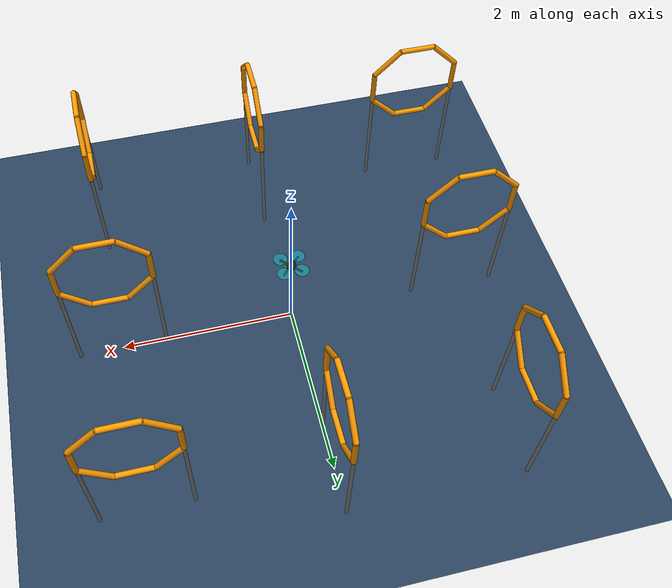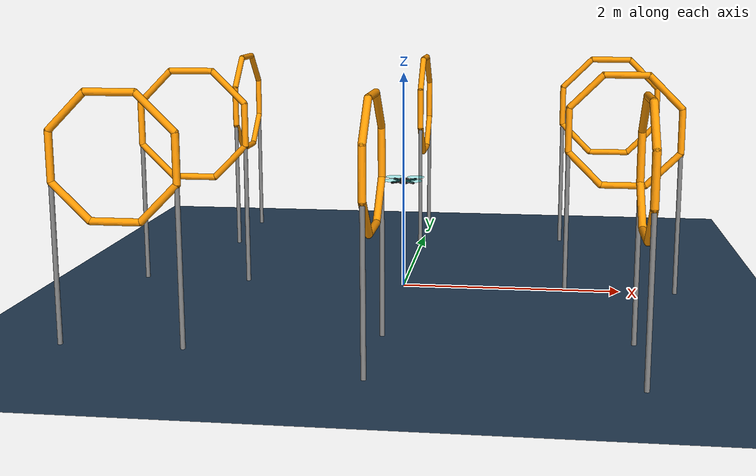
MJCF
<mujoco model="quadrotor_racing">
    <compiler angle="degree" coordinate="local" inertiafromgeom="true"/>
    <option timestep="0.01" gravity="0 0 -9.81" integrator="RK4"/>

    <visual>
        <headlight diffuse="0.6 0.6 0.6" ambient="0.3 0.3 0.3" specular="0 0 0"/>
        <rgba haze="0.15 0.25 0.35 1"/>
        <global azimuth="120" elevation="-20"/>
    </visual>

    <asset>
        <texture type="skybox" builtin="gradient" rgb1="0.3 0.5 0.7" rgb2="0 0 0" width="512" height="3072"/>
        <texture type="2d" name="groundplane" builtin="checker" mark="edge" rgb1="0.2 0.3 0.4" rgb2="0.1 0.2 0.3" markrgb="0.8 0.8 0.8" width="300" height="300"/>
        <material name="groundplane" texture="groundplane" texuniform="true" texrepeat="5 5" reflectance="0.2"/>
        <material name="gate_mat" rgba="1 0.6 0 1" reflectance="0.5" shininess="0.5"/>
        <material name="pole_mat" rgba="0.5 0.5 0.5 1" reflectance="0.2"/>
        <material name="drone_mat" rgba="0.1 0.1 0.1 1" reflectance="0.8" shininess="0.8"/>
        <material name="prop_mat" rgba="0 1 1 0.3"/>
    </asset>

    <default>
        <geom type="box" condim="6" friction="0.8 0.1 0.1"/>
        <default class="visual">
            <geom type="mesh" mass="0" contype="0" conaffinity="0" group="2"/>
        </default>
        <default class="gate_col">
             <!-- Thinner collision capsules to prevent "invisible wall" hits -->
             <geom type="capsule" size="0.03" material="gate_mat" condim="1"/>
        </default>
        <default class="pole">
            <geom type="cylinder" size="0.02" material="pole_mat" condim="1"/>
        </default>
    </default>

    <worldbody>
        <light pos="0 0 5" dir="0 0 -1" directional="true"/>
        <geom name="floor" type="plane" pos="0 0 0" size="20 20 0.1" material="groundplane"/>

        <!-- ================= OCTAGONAL GATES ================= -->
        <!-- Each gate is built from 8 capsules forming a ring -->

        <!-- Gate 1 (2.0, 0.0) -->
        <body name="gate1" pos="2.0 0.0 1.5">
            <geom class="gate_col" fromto="0.2 0 0.5   -0.2 0 0.5"/> <!-- Top -->
            <geom class="gate_col" fromto="0.2 0 -0.5  -0.2 0 -0.5"/> <!-- Bottom -->
            <geom class="gate_col" fromto="0.5 0 0.2   0.5 0 -0.2"/> <!-- Right -->
            <geom class="gate_col" fromto="-0.5 0 0.2  -0.5 0 -0.2"/> <!-- Left -->
            <geom class="gate_col" fromto="0.2 0 0.5   0.5 0 0.2"/> <!-- TR -->
            <geom class="gate_col" fromto="-0.2 0 0.5  -0.5 0 0.2"/> <!-- TL -->
            <geom class="gate_col" fromto="0.2 0 -0.5  0.5 0 -0.2"/> <!-- BR -->
            <geom class="gate_col" fromto="-0.2 0 -0.5 -0.5 0 -0.2"/> <!-- BL -->
            <geom class="pole" fromto="0.5 0 -0.2  0.5 0 -1.5"/>
            <geom class="pole" fromto="-0.5 0 -0.2 -0.5 0 -1.5"/>
        </body>

        <!-- Gate 2 (2.0, 2.0) -->
        <body name="gate2" pos="2.0 2.0 1.5">
            <geom class="gate_col" fromto="0.2 0 0.5   -0.2 0 0.5"/>
            <geom class="gate_col" fromto="0.2 0 -0.5  -0.2 0 -0.5"/>
            <geom class="gate_col" fromto="0.5 0 0.2   0.5 0 -0.2"/>
            <geom class="gate_col" fromto="-0.5 0 0.2  -0.5 0 -0.2"/>
            <geom class="gate_col" fromto="0.2 0 0.5   0.5 0 0.2"/>
            <geom class="gate_col" fromto="-0.2 0 0.5  -0.5 0 0.2"/>
            <geom class="gate_col" fromto="0.2 0 -0.5  0.5 0 -0.2"/>
            <geom class="gate_col" fromto="-0.2 0 -0.5 -0.5 0 -0.2"/>
            <geom class="pole" fromto="0.5 0 -0.2  0.5 0 -1.5"/>
            <geom class="pole" fromto="-0.5 0 -0.2 -0.5 0 -1.5"/>
        </body>

        <!-- Gate 3 (0.0, 2.0) - Rotated 90 -->
        <body name="gate3" pos="0.0 2.0 1.5" euler="0 0 90">
            <geom class="gate_col" fromto="0.2 0 0.5   -0.2 0 0.5"/>
            <geom class="gate_col" fromto="0.2 0 -0.5  -0.2 0 -0.5"/>
            <geom class="gate_col" fromto="0.5 0 0.2   0.5 0 -0.2"/>
            <geom class="gate_col" fromto="-0.5 0 0.2  -0.5 0 -0.2"/>
            <geom class="gate_col" fromto="0.2 0 0.5   0.5 0 0.2"/>
            <geom class="gate_col" fromto="-0.2 0 0.5  -0.5 0 0.2"/>
            <geom class="gate_col" fromto="0.2 0 -0.5  0.5 0 -0.2"/>
            <geom class="gate_col" fromto="-0.2 0 -0.5 -0.5 0 -0.2"/>
            <geom class="pole" fromto="0.5 0 -0.2  0.5 0 -1.5"/>
            <geom class="pole" fromto="-0.5 0 -0.2 -0.5 0 -1.5"/>
        </body>

        <!-- Gate 4 (-2.0, 2.0) - Rotated 90 -->
        <body name="gate4" pos="-2.0 2.0 1.5" euler="0 0 90">
            <geom class="gate_col" fromto="0.2 0 0.5   -0.2 0 0.5"/>
            <geom class="gate_col" fromto="0.2 0 -0.5  -0.2 0 -0.5"/>
            <geom class="gate_col" fromto="0.5 0 0.2   0.5 0 -0.2"/>
            <geom class="gate_col" fromto="-0.5 0 0.2  -0.5 0 -0.2"/>
            <geom class="gate_col" fromto="0.2 0 0.5   0.5 0 0.2"/>
            <geom class="gate_col" fromto="-0.2 0 0.5  -0.5 0 0.2"/>
            <geom class="gate_col" fromto="0.2 0 -0.5  0.5 0 -0.2"/>
            <geom class="gate_col" fromto="-0.2 0 -0.5 -0.5 0 -0.2"/>
            <geom class="pole" fromto="0.5 0 -0.2  0.5 0 -1.5"/>
            <geom class="pole" fromto="-0.5 0 -0.2 -0.5 0 -1.5"/>
        </body>

        <!-- Gate 5 (-2.0, 0.0) -->
        <body name="gate5" pos="-2.0 0.0 1.5">
            <geom class="gate_col" fromto="0.2 0 0.5   -0.2 0 0.5"/>
            <geom class="gate_col" fromto="0.2 0 -0.5  -0.2 0 -0.5"/>
            <geom class="gate_col" fromto="0.5 0 0.2   0.5 0 -0.2"/>
            <geom class="gate_col" fromto="-0.5 0 0.2  -0.5 0 -0.2"/>
            <geom class="gate_col" fromto="0.2 0 0.5   0.5 0 0.2"/>
            <geom class="gate_col" fromto="-0.2 0 0.5  -0.5 0 0.2"/>
            <geom class="gate_col" fromto="0.2 0 -0.5  0.5 0 -0.2"/>
            <geom class="gate_col" fromto="-0.2 0 -0.5 -0.5 0 -0.2"/>
            <geom class="pole" fromto="0.5 0 -0.2  0.5 0 -1.5"/>
            <geom class="pole" fromto="-0.5 0 -0.2 -0.5 0 -1.5"/>
        </body>

        <!-- Gate 6 (-2.0, -2.0) -->
        <body name="gate6" pos="-2.0 -2.0 1.5">
            <geom class="gate_col" fromto="0.2 0 0.5   -0.2 0 0.5"/>
            <geom class="gate_col" fromto="0.2 0 -0.5  -0.2 0 -0.5"/>
            <geom class="gate_col" fromto="0.5 0 0.2   0.5 0 -0.2"/>
            <geom class="gate_col" fromto="-0.5 0 0.2  -0.5 0 -0.2"/>
            <geom class="gate_col" fromto="0.2 0 0.5   0.5 0 0.2"/>
            <geom class="gate_col" fromto="-0.2 0 0.5  -0.5 0 0.2"/>
            <geom class="gate_col" fromto="0.2 0 -0.5  0.5 0 -0.2"/>
            <geom class="gate_col" fromto="-0.2 0 -0.5 -0.5 0 -0.2"/>
            <geom class="pole" fromto="0.5 0 -0.2  0.5 0 -1.5"/>
            <geom class="pole" fromto="-0.5 0 -0.2 -0.5 0 -1.5"/>
        </body>

        <!-- Gate 7 (0.0, -2.0) - Rotated 90 -->
        <body name="gate7" pos="0.0 -2.0 1.5" euler="0 0 90">
            <geom class="gate_col" fromto="0.2 0 0.5   -0.2 0 0.5"/>
            <geom class="gate_col" fromto="0.2 0 -0.5  -0.2 0 -0.5"/>
            <geom class="gate_col" fromto="0.5 0 0.2   0.5 0 -0.2"/>
            <geom class="gate_col" fromto="-0.5 0 0.2  -0.5 0 -0.2"/>
            <geom class="gate_col" fromto="0.2 0 0.5   0.5 0 0.2"/>
            <geom class="gate_col" fromto="-0.2 0 0.5  -0.5 0 0.2"/>
            <geom class="gate_col" fromto="0.2 0 -0.5  0.5 0 -0.2"/>
            <geom class="gate_col" fromto="-0.2 0 -0.5 -0.5 0 -0.2"/>
            <geom class="pole" fromto="0.5 0 -0.2  0.5 0 -1.5"/>
            <geom class="pole" fromto="-0.5 0 -0.2 -0.5 0 -1.5"/>
        </body>

        <!-- Gate 8 (2.0, -2.0) - Rotated 90 -->
        <body name="gate8" pos="2.0 -2.0 1.5" euler="0 0 90">
            <geom class="gate_col" fromto="0.2 0 0.5   -0.2 0 0.5"/>
            <geom class="gate_col" fromto="0.2 0 -0.5  -0.2 0 -0.5"/>
            <geom class="gate_col" fromto="0.5 0 0.2   0.5 0 -0.2"/>
            <geom class="gate_col" fromto="-0.5 0 0.2  -0.5 0 -0.2"/>
            <geom class="gate_col" fromto="0.2 0 0.5   0.5 0 0.2"/>
            <geom class="gate_col" fromto="-0.2 0 0.5  -0.5 0 0.2"/>
            <geom class="gate_col" fromto="0.2 0 -0.5  0.5 0 -0.2"/>
            <geom class="gate_col" fromto="-0.2 0 -0.5 -0.5 0 -0.2"/>
            <geom class="pole" fromto="0.5 0 -0.2  0.5 0 -1.5"/>
            <geom class="pole" fromto="-0.5 0 -0.2 -0.5 0 -1.5"/>
        </body>

        <!-- ================= DRONE ================= -->
        <body name="quad" pos="0 0 1.0">
            <freejoint name="root"/>
            <geom name="body" type="box" size="0.10 0.10 0.03" density="250" rgba="0 0 0 0"/>

            <body name="visuals">
                <geom type="ellipsoid" size="0.06 0.06 0.03" rgba="0.1 0.1 0.1 1" mass="0" contype="0" conaffinity="0"/>
                <geom type="box" size="0.03 0.02 0.015" pos="0.05 0 0" rgba="0 1 0 0.5" mass="0" contype="0" conaffinity="0"/>

                <geom type="capsule" fromto="0 0 0  0.10 0.10 0" size="0.01" material="drone_mat" mass="0" contype="0" conaffinity="0"/>
                <geom type="capsule" fromto="0 0 0  0.10 -0.10 0" size="0.01" material="drone_mat" mass="0" contype="0" conaffinity="0"/>
                <geom type="capsule" fromto="0 0 0 -0.10 -0.10 0" size="0.01" material="drone_mat" mass="0" contype="0" conaffinity="0"/>
                <geom type="capsule" fromto="0 0 0 -0.10 0.10 0" size="0.01" material="drone_mat" mass="0" contype="0" conaffinity="0"/>

                <geom type="cylinder" pos="0.10 0.10 0.02" size="0.08 0.001" material="prop_mat" mass="0" contype="0" conaffinity="0"/>
                <geom type="cylinder" pos="0.10 -0.10 0.02" size="0.08 0.001" material="prop_mat" mass="0" contype="0" conaffinity="0"/>
                <geom type="cylinder" pos="-0.10 -0.10 0.02" size="0.08 0.001" material="prop_mat" mass="0" contype="0" conaffinity="0"/>
                <geom type="cylinder" pos="-0.10 0.10 0.02" size="0.08 0.001" material="prop_mat" mass="0" contype="0" conaffinity="0"/>
            </body>

            <site name="rotor1" pos=" 0.14  0.14  0.02" size="0.001" rgba="0 0 0 0"/>
            <site name="rotor2" pos=" 0.14 -0.14  0.02" size="0.001" rgba="0 0 0 0"/>
            <site name="rotor3" pos="-0.14 -0.14  0.02" size="0.001" rgba="0 0 0 0"/>
            <site name="rotor4" pos="-0.14  0.14  0.02" size="0.001" rgba="0 0 0 0"/>
        </body>
    </worldbody>
</mujoco>
